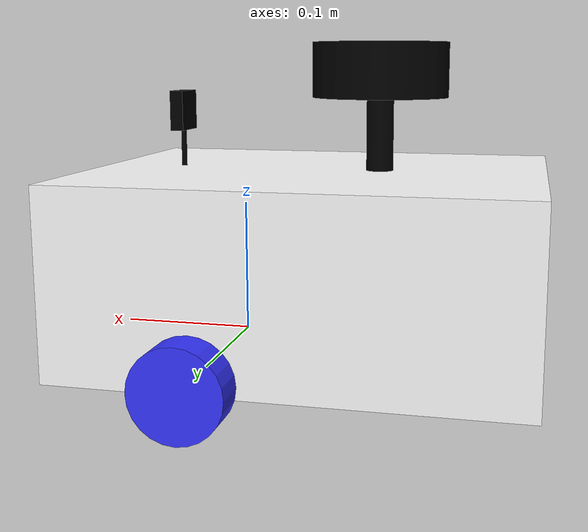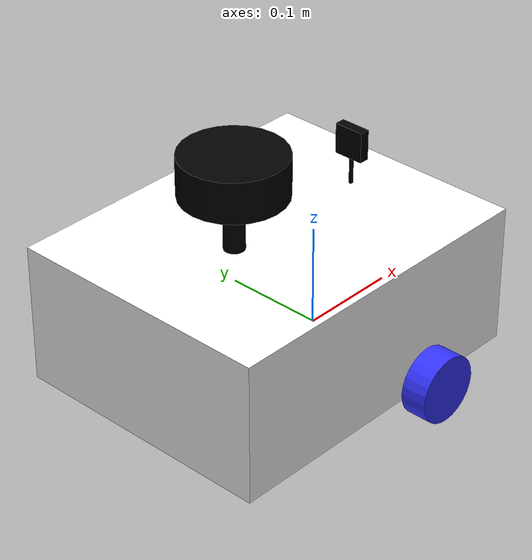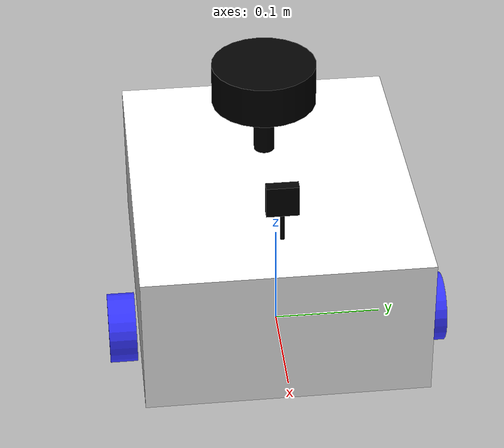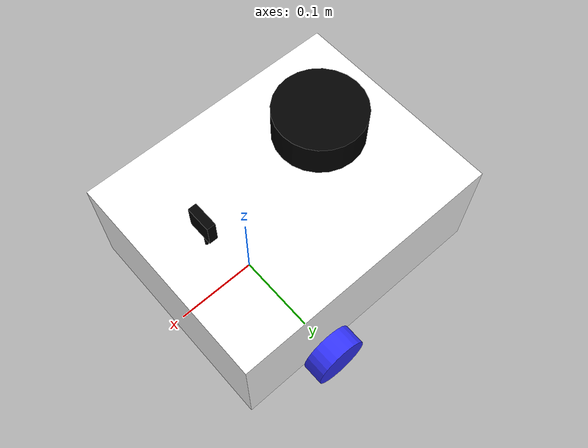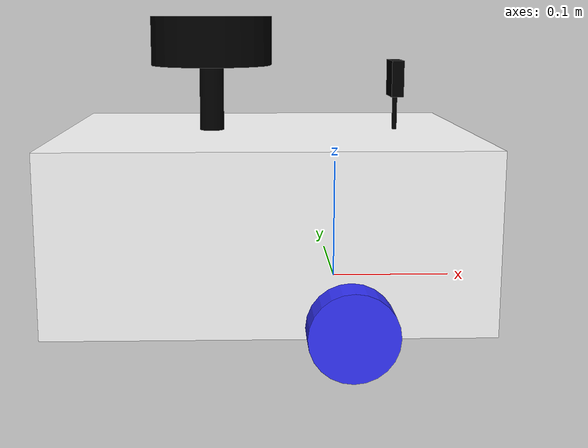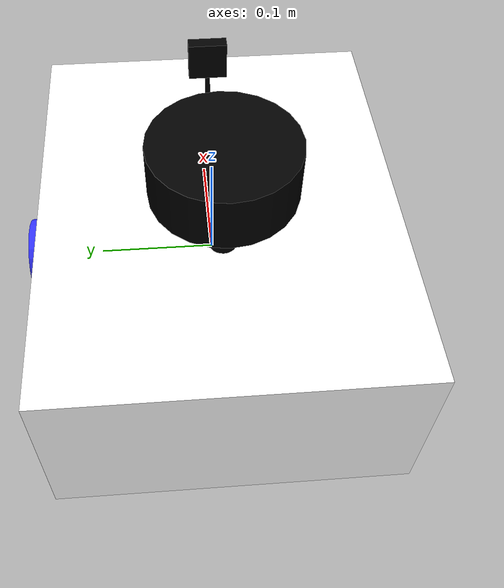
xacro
<?xml version="1.0"?>
<robot xmlns:xacro="http://www.ros.org/wiki/xacro"  name="robot">

    <xacro:arg name="use_ros2_control" default="true"/>

    <xacro:include filename="robot_core.xacro" />

    <xacro:if value="$(arg use_ros2_control)">
        <xacro:include filename="ros2_control.xacro" />
    </xacro:if>
    <xacro:unless value="$(arg use_ros2_control)">
        <xacro:include filename="gazebo_control.xacro" />
    </xacro:unless>

    <xacro:include filename="lidar.xacro" />
    <xacro:include filename="camera.xacro" />

</robot>

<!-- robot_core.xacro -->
<robot xmlns:xacro="http://www.ros.org/wiki/xacro" >

    <xacro:include filename="inertial_macros.xacro"/>

    <xacro:property name="chassis_length" value="0.335"/>
    <xacro:property name="chassis_width" value="0.265"/>
    <xacro:property name="chassis_height" value="0.138"/>
    <xacro:property name="chassis_mass" value="1.0"/>
    <xacro:property name="wheel_radius" value="0.033"/>
    <xacro:property name="wheel_thickness" value="0.026"/>
    <xacro:property name="wheel_mass" value="0.05"/>
    <xacro:property name="wheel_offset_x" value="0.226"/>
    <xacro:property name="wheel_offset_y" value="0.1485"/>
    <xacro:property name="wheel_offset_z" value="0.01"/>
    <xacro:property name="caster_wheel_radius" value="0.01"/>
    <xacro:property name="caster_wheel_mass" value="0.01"/>
    <xacro:property name="caster_wheel_offset_x" value="0.075"/>
    <xacro:property name="caster_wheel_offset_z" value="${wheel_offset_z - wheel_radius + caster_wheel_radius}"/>

    <material name="white">
        <color rgba="1 1 1 1" />
    </material>

    <material name="orange">
        <color rgba="1 0.3 0.1 1"/>
    </material>

    <material name="blue">
        <color rgba="0.2 0.2 1 1"/>
    </material>

    <material name="black">
        <color rgba="0 0 0 1"/>
    </material>

    <material name="red">
        <color rgba="1 0 0 1"/>
    </material>

    <!-- BASE LINK -->

    <link name="base_link">

    </link>

    <!-- CHASSIS LINK -->

    <joint name="chassis_joint" type="fixed">
        <parent link="base_link"/>
        <child link="chassis"/>
        <origin xyz="${-wheel_offset_x} 0 ${-wheel_offset_z}"/>
    </joint>

    <link name="chassis">
        <visual>
            <origin xyz="${chassis_length/2} 0 ${chassis_height/2}"/>
            <geometry>
                <box size="${chassis_length} ${chassis_width} ${chassis_height}"/>
            </geometry>
            <material name="white"/>
        </visual>
        <collision>
            <origin xyz="${chassis_length/2} 0 ${chassis_height/2}"/>
            <geometry>
                <box size="${chassis_length} ${chassis_width} ${chassis_height}"/>
            </geometry>
        </collision>
        <xacro:inertial_box mass="0.5" x="${chassis_length}" y="${chassis_width}" z="${chassis_height}">
            <origin xyz="${chassis_length/2} 0 ${chassis_height/2}" rpy="0 0 0"/>
        </xacro:inertial_box>
    </link>

    <gazebo reference="chassis">
        <material>Gazebo/White</material>
    </gazebo>

    <!-- LEFT WHEEL LINK -->

    <joint name="left_wheel_joint" type="continuous">
        <parent link="base_link"/>
        <child link="left_wheel"/>
        <origin xyz="0 ${wheel_offset_y} 0" rpy="-${pi/2} 0 0" />
        <axis xyz="0 0 1"/>
    </joint>

    <link name="left_wheel">
        <visual>
            <geometry>
                <cylinder radius="${wheel_radius}" length="${wheel_thickness}"/>
            </geometry>
            <material name="blue"/>
        </visual>
        <collision>
            <geometry>
                <sphere radius="${wheel_radius}"/>
            </geometry>
        </collision>
        <xacro:inertial_cylinder mass="${wheel_mass}" length="${wheel_thickness}" radius="${wheel_radius}">
            <origin xyz="0 0 0" rpy="0 0 0"/>
        </xacro:inertial_cylinder>
    </link>

    <gazebo reference="left_wheel">
        <material>Gazebo/Blue</material>
    </gazebo>

    <!-- RIGHT WHEEL LINK -->

    <joint name="right_wheel_joint" type="continuous">
        <parent link="base_link"/>
        <child link="right_wheel"/>
        <origin xyz="0 ${-wheel_offset_y} 0" rpy="${pi/2} 0 0" />
        <axis xyz="0 0 -1"/>
    </joint>

    <link name="right_wheel">
        <visual>
            <geometry>
                <cylinder radius="${wheel_radius}" length="${wheel_thickness}"/>
            </geometry>
            <material name="blue"/>
        </visual>
        <collision>
            <geometry>
                <sphere radius="${wheel_radius}"/>
            </geometry>
        </collision>
        <xacro:inertial_cylinder mass="${wheel_mass}" length="${wheel_thickness}" radius="${wheel_radius}">
            <origin xyz="0 0 0" rpy="0 0 0"/>
        </xacro:inertial_cylinder>
    </link>

    <gazebo reference="right_wheel">
        <material>Gazebo/Blue</material>
    </gazebo>

    <!-- CASTER WHEEL LINK -->

    <joint name="caster_wheel_joint" type="fixed">
        <parent link="chassis"/>
        <child link="caster_wheel"/>
        <origin xyz="${caster_wheel_offset_x} 0 ${caster_wheel_offset_z}"/>
    </joint>

    <link name="caster_wheel">
        <visual>
            <geometry>
                <sphere radius="${caster_wheel_radius}"/>
            </geometry>
            <material name="white"/>
        </visual>
        <collision>
            <geometry>
                <sphere radius="${caster_wheel_radius}"/>
            </geometry>
        </collision>
        <xacro:inertial_sphere mass="${caster_wheel_mass}" radius="${caster_wheel_radius}">
            <origin xyz="0 0 0" rpy="0 0 0"/>
        </xacro:inertial_sphere>
    </link>

    <gazebo reference="caster_wheel">
        <material>Gazebo/White</material>
        <mu1 value="0.001"/>
        <mu2 value="0.001"/>
    </gazebo>

</robot>

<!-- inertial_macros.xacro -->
<robot xmlns:xacro="http://www.ros.org/wiki/xacro" >

    <!-- Specify some standard inertial calculations https://en.wikipedia.org/wiki/List_of_moments_of_inertia -->
    <!-- These make use of xacro's mathematical functionality -->

    <!-- Moment quan tinh hình cầu-->
    <xacro:macro name="inertial_sphere" params="mass radius *origin">
        <inertial>
            <xacro:insert_block name="origin"/>
            <mass value="${mass}" />
            <inertia ixx="${(2/5) * mass * (radius*radius)}" ixy="0.0" ixz="0.0"
                    iyy="${(2/5) * mass * (radius*radius)}" iyz="0.0"
                    izz="${(2/5) * mass * (radius*radius)}" />
        </inertial>
    </xacro:macro>

    <!-- Moment quan tinh hình hộp chữ nhật-->
    <xacro:macro name="inertial_box" params="mass x y z *origin">
        <inertial>
            <xacro:insert_block name="origin"/>
            <mass value="${mass}" />
            <inertia ixx="${(1/12) * mass * (y*y+z*z)}" ixy="0.0" ixz="0.0"
                    iyy="${(1/12) * mass * (x*x+z*z)}" iyz="0.0"
                    izz="${(1/12) * mass * (x*x+y*y)}" />
        </inertial>
    </xacro:macro>

    <!-- Moment quan tinh hình trụ -->
    <xacro:macro name="inertial_cylinder" params="mass length radius *origin">
        <inertial>
            <xacro:insert_block name="origin"/>
            <mass value="${mass}" />
            <inertia ixx="${(1/12) * mass * (3*radius*radius + length*length)}" ixy="0.0" ixz="0.0"
                    iyy="${(1/12) * mass * (3*radius*radius + length*length)}" iyz="0.0"
                    izz="${(1/2) * mass * (radius*radius)}" />
        </inertial>
    </xacro:macro>

</robot>

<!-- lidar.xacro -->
<robot xmlns:xacro="http://www.ros.org/wiki/xacro" >

    <joint name="laser_joint" type="fixed">
        <parent link="chassis"/>
        <child link="laser_frame"/>
        <origin xyz="0.122 0 0.212" rpy="0 0 0"/>
    </joint>

    <link name="laser_frame">
        <visual>
            <geometry>
                <cylinder radius="0.05" length="0.04"/>
            </geometry>
            <material name="black"/>
        </visual>
        <visual>
            <origin xyz="0 0 -0.05"/>
            <geometry>
                <cylinder radius="0.01" length="0.1"/>
            </geometry>
            <material name="black"/>
        </visual>
        <collision>
            <geometry>
                <cylinder radius="0.05" length="0.04"/>
            </geometry>
        </collision>
        <xacro:inertial_cylinder mass="0.1" length="0.04" radius="0.05">
            <origin xyz="0 0 0" rpy="0 0 0"/>
        </xacro:inertial_cylinder>
    </link>

    <gazebo reference="laser_frame">
        <material>Gazebo/Black</material>

        <sensor name="laser" type="ray">  <!--Ray Tracing-->
            <pose> 0 0 0 0 0 0 </pose>
            <visualize>false</visualize>
            <update_rate>10</update_rate> <!-- Tần số quét là 10 Hz -->
            <ray>
                <scan>
                    <horizontal>
                        <samples>360</samples> <!-- 1 vòng quay nó lấy 360 điểm dữ liệu -->
                        <min_angle>-3.14</min_angle>
                        <max_angle>3.14</max_angle>
                    </horizontal>
                </scan>
                <range>
                    <min>0.3</min>
                    <max>8</max> <!--Pham vi do dc max-->
                </range>
            </ray>
            <!--biến dữ liệu ảo thành topic ROS.-->
            <plugin name="laser_controller" filename="libgazebo_ros_ray_sensor.so"> <!--Library simulate lidar in ROS-->
                <ros>
                    <argument>~/out:=scan</argument> <!--đổi tên topic, Mặc định plugin sẽ public ra topic khac-->
                </ros>
                <output_type>sensor_msgs/LaserScan</output_type> <!--Publish ra array data -->
                <frame_name>laser_frame</frame_name> <!--Dữ liệu bắn ra sẽ gắn với hệ toạ độ laser_frame-->
            </plugin>
        </sensor>
    </gazebo>

</robot>

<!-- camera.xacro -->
<robot xmlns:xacro="http://www.ros.org/wiki/xacro" >

    <!--Phần Vật lý: Gắn vỏ camera vào xe-->
    <joint name="camera_joint" type="fixed">
        <parent link="chassis"/>
        <child link="camera_link"/>
        <origin xyz="0.276 0 0.181" rpy="0 0 0"/>
    </joint>

    <!-- Hinh dang cua box camera -->
    <link name="camera_link">
        <visual>
            <geometry>
                <box size="0.010 0.03 0.03"/>
            </geometry>
            <material name="black"/>
        </visual>
        <visual>
            <origin xyz="0 0 -0.05"/>
            <geometry>
                <cylinder radius="0.002" length="0.1"/>
            </geometry>
            <material name="black"/>
        </visual>
    </link>

    <!--"link ảo", nằm trùng vị trí với camera thật nhưng xoay đúng hướng để xử lý image-->
    <joint name="camera_optical_joint" type="fixed">
        <parent link="camera_link"/>
        <child link="camera_link_optical"/>
        <origin xyz="0 0 0" rpy="${-pi/2} 0 ${-pi/2}"/> <!--bẻ hệ tọa độ của ROS trùng khớp với hệ tọa độ chuẩn của Cam.-->
    </joint>

    <link name="camera_link_optical"></link>

    <gazebo reference="camera_link">
        <material>Gazebo/Black</material>

        <!--Plugin Camera hoat dong trong Gazebo-->
        <sensor name="camera" type="camera">
            <pose> 0 0 0 0 0 0 </pose>
            <visualize>true</visualize>
            <update_rate>10</update_rate>
            <camera>
                <horizontal_fov>1.089</horizontal_fov>
                <image>
                    <format>R8G8B8</format>
                    <width>640</width> <!--Độ phân giải-->
                    <height>480</height>
                </image>
                <clip>
                    <near>0.05</near> <!--Range Active-->
                    <far>8.0</far>
                </clip>
            </camera>
            <plugin name="camera_controller" filename="libgazebo_ros_camera.so"> <!--Library camera cua ROS-->
                <frame_name>camera_link_optical</frame_name> <!-- Topic -->
            </plugin>
        </sensor>
    </gazebo>

</robot>
